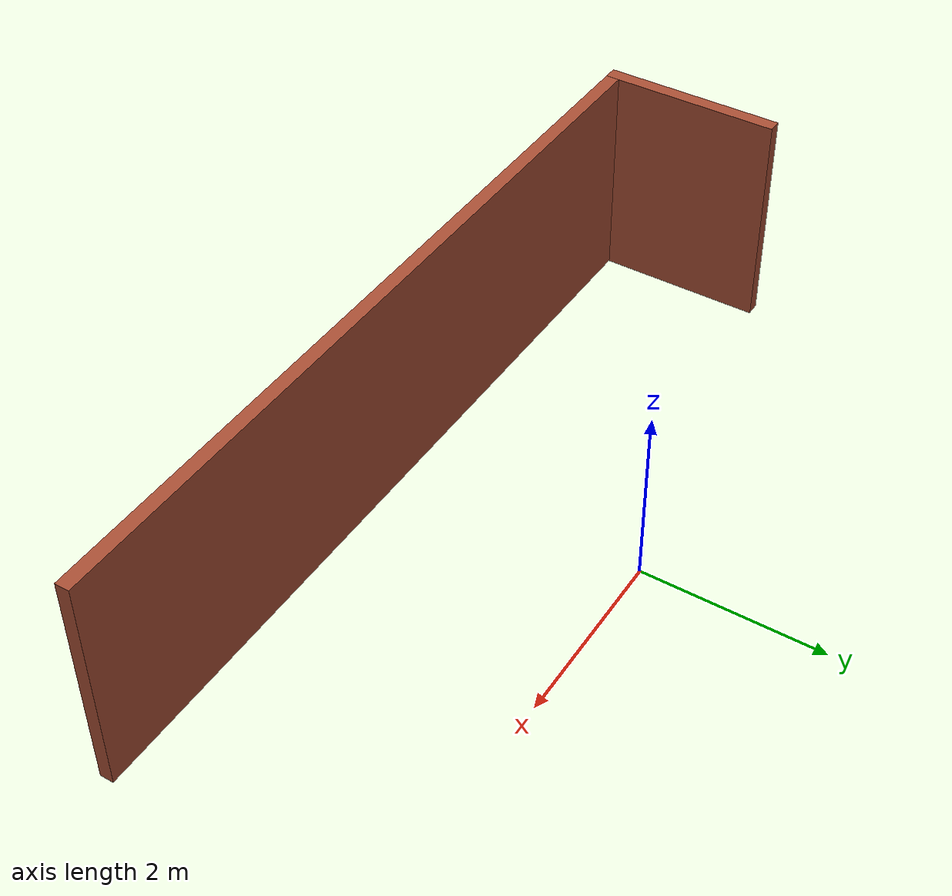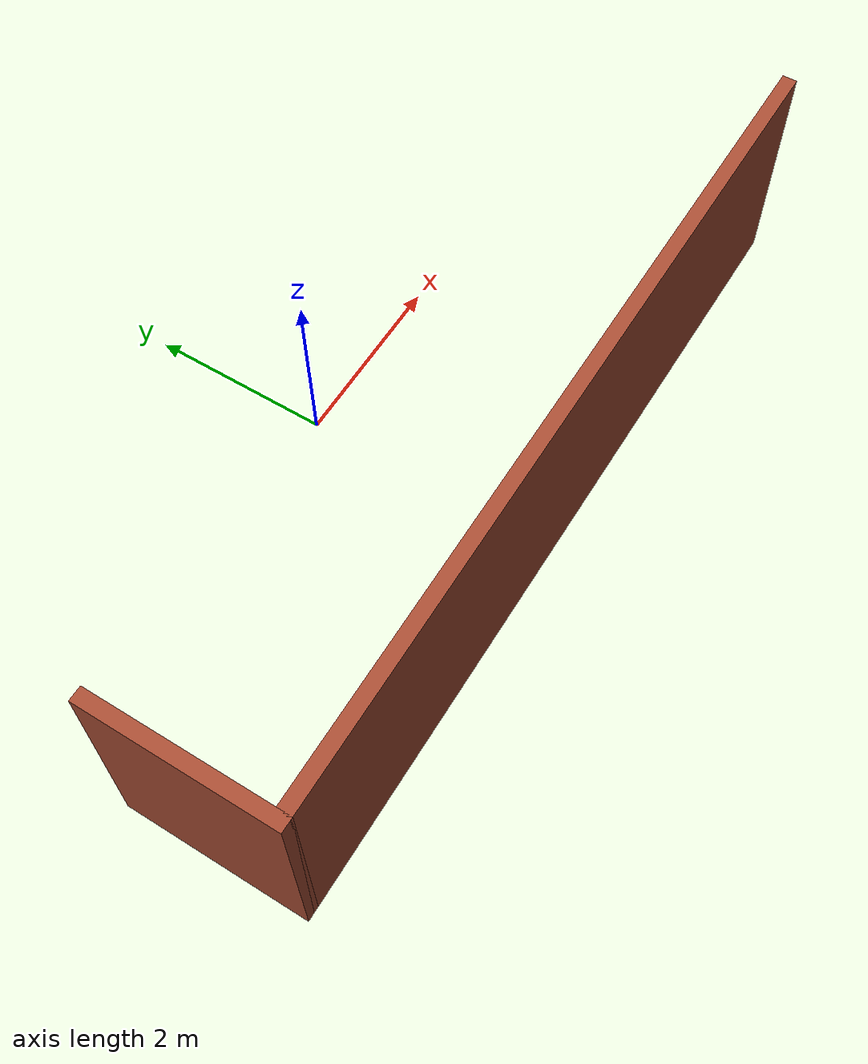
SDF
<?xml version='1.0'?>
<sdf version='1.6'>
  <model name='wall1'>
    <pose frame=''>0.165 -1.855 0 0 -0 0</pose>
    <link name='Wall_4'>
      <collision name='Wall_4_Collision'>
        <geometry>
          <box>
            <size>2 0.15 2.5</size>
          </box>
        </geometry>
        <pose frame=''>0 0 1.25 0 -0 0</pose>
      </collision>
      <visual name='Wall_4_Visual'>
        <pose frame=''>0 0 1.25 0 -0 0</pose>
        <geometry>
          <box>
            <size>2 0.15 2.5</size>
          </box>
        </geometry>
        <material>
          <script>
            <uri>file://media/materials/scripts/gazebo.material</uri>
            <name>Gazebo/Bricks</name>
          </script>
          <ambient>1 1 1 1</ambient>
        </material>
        <meta>
          <layer>0</layer>
        </meta>
      </visual>
      <pose frame=''>-4.425 -0 0 0 -0 -1.5708</pose>
    </link>
    <link name='Wall_5'>
      <collision name='Wall_5_Collision'>
        <geometry>
          <box>
            <size>9 0.15 2.5</size>
          </box>
        </geometry>
        <pose frame=''>0 0 1.25 0 -0 0</pose>
      </collision>
      <visual name='Wall_5_Visual'>
        <pose frame=''>0 0 1.25 0 -0 0</pose>
        <geometry>
          <box>
            <size>9 0.15 2.5</size>
          </box>
        </geometry>
        <material>
          <script>
            <uri>file://media/materials/scripts/gazebo.material</uri>
            <name>Gazebo/Bricks</name>
          </script>
          <ambient>1 1 1 1</ambient>
        </material>
        <meta>
          <layer>0</layer>
        </meta>
      </visual>
      <pose frame=''>0 -0.925 0 0 -0 0</pose>
    </link>
    <static>1</static>
  </model>
</sdf>
